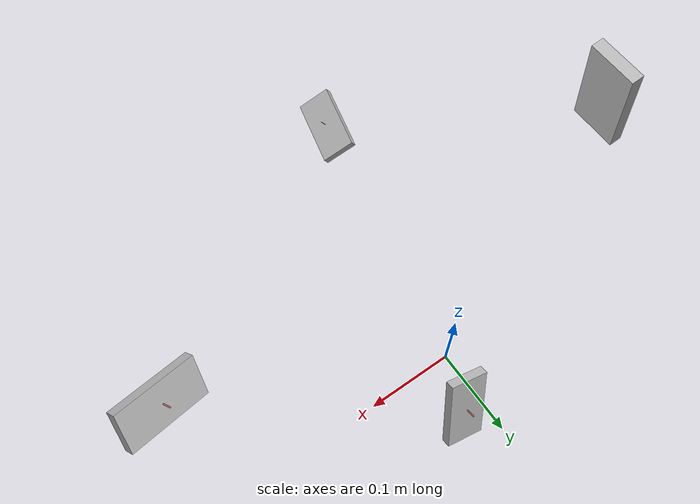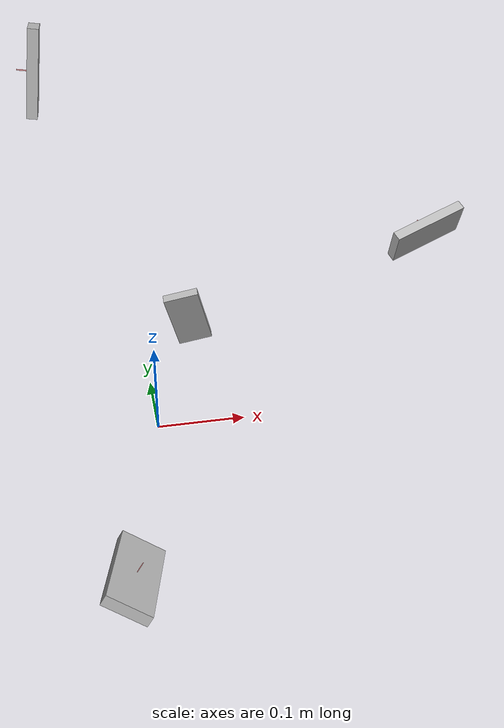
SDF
<?xml version="1.0" ?>
<sdf version="1.4">
  <world name="default">
    <include>
      <uri>model://sun</uri>
    </include>

    <gui>
        <camera name="user_camera">
          <pose>.55 -.61 .65 0 .6 2.2</pose>
        </camera>
    </gui>

    <!-- TO CONVERT HOMOGENEOUS TRANSFORMS TO GAZEBO POSE (TRANS + EULER) -->
    <!-- pose = [T0e(1:3,4).'/1000 flip(rotm2eul(T0e(1:3,1:3),'ZYX'))] -->

    <model name="marker1">
      <pose> 0.047046 .073269 .100547 2.9027 -0.4094 1.5501</pose>
      <static>1</static>
      <link name="link">
        <visual name="visual">
          <geometry>
            <box>
              <size>0.01 0.04 0.08</size>
            </box>
          </geometry>
        </visual>
        <visual name="ax">
          <pose>.0075 0 0 0 0 0</pose>
          <geometry>
            <box>
              <size>.015 .001 .001</size>
            </box>
          </geometry>
          <material>
            <script>
              <uri>file://media/materials/scripts/gazebo.material</uri>
              <name>Gazebo/RedTransparentOverlay</name>
            </script>
          </material>
        </visual>
        <visual name="ay">
          <pose>0 .0075 0 0 0 0</pose>
          <geometry>
            <box>
              <size>.001 .015 .001</size>
            </box>
          </geometry>
          <material>
            <script>
              <uri>file://media/materials/scripts/gazebo.material</uri>
              <name>Gazebo/GreenTransparentOverlay</name>
            </script>
          </material>
        </visual>
        <visual name="az">
          <pose>0 0 .0075 0 0 0</pose>
          <geometry>
            <box>
              <size>.001 .001 .015</size>
            </box>
          </geometry>
          <material>
            <script>
              <uri>file://media/materials/scripts/gazebo.material</uri>
              <name>Gazebo/BlueTransparentOverlay</name>
            </script>
          </material>
        </visual>
      </link>
    </model>

    <model name="marker2">
      <pose> -0.0953156 0 0.402366 0   -0.1193    3.1416</pose>
      <static>1</static>
      <link name="link">
        <visual name="visual">
          <geometry>
            <box>
              <size>0.01 0.04 0.08</size>
            </box>
          </geometry>
        </visual>
        <visual name="ax">
          <pose>.0075 0 0 0 0 0</pose>
          <geometry>
            <box>
              <size>.015 .001 .001</size>
            </box>
          </geometry>
          <material>
            <script>
              <uri>file://media/materials/scripts/gazebo.material</uri>
              <name>Gazebo/RedTransparentOverlay</name>
            </script>
          </material>
        </visual>
        <visual name="ay">
          <pose>0 .0075 0 0 0 0</pose>
          <geometry>
            <box>
              <size>.001 .015 .001</size>
            </box>
          </geometry>
          <material>
            <script>
              <uri>file://media/materials/scripts/gazebo.material</uri>
              <name>Gazebo/GreenTransparentOverlay</name>
            </script>
          </material>
        </visual>
        <visual name="az">
          <pose>0 0 .0075 0 0 0</pose>
          <geometry>
            <box>
              <size>.001 .001 .015</size>
            </box>
          </geometry>
          <material>
            <script>
              <uri>file://media/materials/scripts/gazebo.material</uri>
              <name>Gazebo/BlueTransparentOverlay</name>
            </script>
          </material>
        </visual>
      </link>
    </model>

    <model name="marker3">
      <pose>0.28296 -0.048302 0.235071 1.2346   -0.5449    1.9808</pose>
      <static>1</static>
      <link name="link">
        <visual name="visual">
          <geometry>
            <box>
              <size>0.01 0.04 0.08</size>
            </box>
          </geometry>
        </visual>
        <visual name="ax">
          <pose>.0075 0 0 0 0 0</pose>
          <geometry>
            <box>
              <size>.015 .001 .001</size>
            </box>
          </geometry>
          <material>
            <script>
              <uri>file://media/materials/scripts/gazebo.material</uri>
              <name>Gazebo/RedTransparentOverlay</name>
            </script>
          </material>
        </visual>
        <visual name="ay">
          <pose>0 .0075 0 0 0 0</pose>
          <geometry>
            <box>
              <size>.001 .015 .001</size>
            </box>
          </geometry>
          <material>
            <script>
              <uri>file://media/materials/scripts/gazebo.material</uri>
              <name>Gazebo/GreenTransparentOverlay</name>
            </script>
          </material>
        </visual>
        <visual name="az">
          <pose>0 0 .0075 0 0 0</pose>
          <geometry>
            <box>
              <size>.001 .001 .015</size>
            </box>
          </geometry>
          <material>
            <script>
              <uri>file://media/materials/scripts/gazebo.material</uri>
              <name>Gazebo/BlueTransparentOverlay</name>
            </script>
          </material>
        </visual>
      </link>
    </model>

    <model name="marker4">
      <pose>-0.045 -0.3 0.063 1.3956   -1.0399   -0.0604</pose>
      <static>1</static>
      <link name="link">
        <visual name="visual">
          <geometry>
            <box>
              <size>0.01 0.04 0.08</size>
            </box>
          </geometry>
        </visual>
        <visual name="ax">
          <pose>.0075 0 0 0 0 0</pose>
          <geometry>
            <box>
              <size>.015 .0005 .0005</size>
            </box>
          </geometry>
          <material>
            <script>
              <uri>file://media/materials/scripts/gazebo.material</uri>
              <name>Gazebo/RedTransparentOverlay</name>
            </script>
          </material>
        </visual>
        <visual name="ay">
          <pose>0 .0075 0 0 0 0</pose>
          <geometry>
            <box>
              <size>.0005 .015 .0005</size>
            </box>
          </geometry>
          <material>
            <script>
              <uri>file://media/materials/scripts/gazebo.material</uri>
              <name>Gazebo/GreenTransparentOverlay</name>
            </script>
          </material>
        </visual>
        <visual name="az">
          <pose>0 0 .0075 0 0 0</pose>
          <geometry>
            <box>
              <size>.0005 .0005 .015</size>
            </box>
          </geometry>
          <material>
            <script>
              <uri>file://media/materials/scripts/gazebo.material</uri>
              <name>Gazebo/BlueTransparentOverlay</name>
            </script>
          </material>
        </visual>
      </link>
    </model>

  </world>
</sdf>
